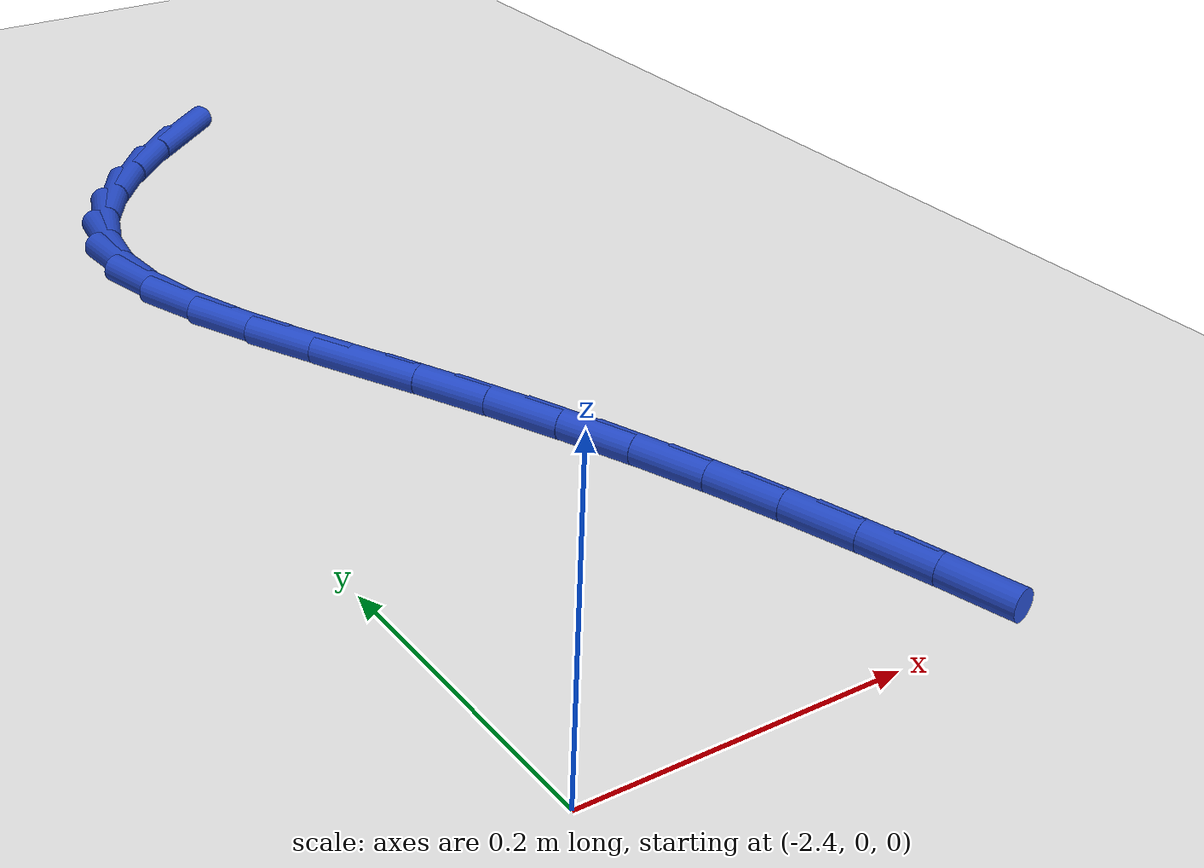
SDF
<sdf version="1.6">
 <world name="default">
  <model name="ground_plane">
   <static>1</static>
   <link name="link">
    <collision name="collision">
     <geometry><plane><normal>0 0 1</normal><size>100 100</size></plane></geometry>
     <surface><friction><ode><mu>100</mu><mu2>50</mu2></ode></friction></surface>
    </collision>
    <visual name="visual">
     <cast_shadows>0</cast_shadows>
     <geometry><plane><normal>0 0 1</normal><size>100 100</size></plane></geometry>
     <material>
      <script><uri>file://media/materials/scripts/gazebo.material</uri><name>Gazebo/WhiteGlow</name></script>
     </material>
    </visual>
   </link>
  </model>
  <model name="line">
   <link name="link_61">
    <pose>-2.2051999308209944 0.8558379560780796 0.01 0 1.57 0.6874436507166901</pose>
    <collision name="collision">
     <geometry><cylinder><radius>0.01</radius><length>0.08</length></cylinder></geometry>
    </collision>
    <visual name="visual">
     <material>
      <script><name>Gazebo/Blue</name><uri>file://media/materials/scripts/gazebo.material</uri></script>
     </material>
     <geometry><cylinder><radius>0.01</radius><length>0.08</length></cylinder></geometry>
    </visual>
   </link>
   <link name="link_62">
    <pose>-2.2441898820816855 0.8238253555588873 0.01 0 1.57 0.776440733396622</pose>
    <collision name="collision">
     <geometry><cylinder><radius>0.01</radius><length>0.08</length></cylinder></geometry>
    </collision>
    <visual name="visual">
     <material>
      <script><name>Gazebo/Blue</name><uri>file://media/materials/scripts/gazebo.material</uri></script>
     </material>
     <geometry><cylinder><radius>0.01</radius><length>0.08</length></cylinder></geometry>
    </visual>
   </link>
   <link name="link_63">
    <pose>-2.278228902363531 0.7903907417959494 0.01 0 1.57 0.8913175580256163</pose>
    <collision name="collision">
     <geometry><cylinder><radius>0.01</radius><length>0.08</length></cylinder></geometry>
    </collision>
    <visual name="visual">
     <material>
      <script><name>Gazebo/Blue</name><uri>file://media/materials/scripts/gazebo.material</uri></script>
     </material>
     <geometry><cylinder><radius>0.01</radius><length>0.08</length></cylinder></geometry>
    </visual>
   </link>
   <link name="link_64">
    <pose>-2.3064871210833005 0.7554090251192842 0.01 0 1.57 1.0373223645908425</pose>
    <collision name="collision">
     <geometry><cylinder><radius>0.01</radius><length>0.08</length></cylinder></geometry>
    </collision>
    <visual name="visual">
     <material>
      <script><name>Gazebo/Blue</name><uri>file://media/materials/scripts/gazebo.material</uri></script>
     </material>
     <geometry><cylinder><radius>0.01</radius><length>0.08</length></cylinder></geometry>
    </visual>
   </link>
   <link name="link_65">
    <pose>-2.32813466765776 0.7187551158589084 0.01 0 1.57 1.2168725509842635</pose>
    <collision name="collision">
     <geometry><cylinder><radius>0.01</radius><length>0.08</length></cylinder></geometry>
    </collision>
    <visual name="visual">
     <material>
      <script><name>Gazebo/Blue</name><uri>file://media/materials/scripts/gazebo.material</uri></script>
     </material>
     <geometry><cylinder><radius>0.01</radius><length>0.08</length></cylinder></geometry>
    </visual>
   </link>
   <link name="link_66">
    <pose>-2.3423416715036787 0.6803039243448393 0.01 0 1.57 1.4248009967054336</pose>
    <collision name="collision">
     <geometry><cylinder><radius>0.01</radius><length>0.08</length></cylinder></geometry>
    </collision>
    <visual name="visual">
     <material>
      <script><name>Gazebo/Blue</name><uri>file://media/materials/scripts/gazebo.material</uri></script>
     </material>
     <geometry><cylinder><radius>0.01</radius><length>0.08</length></cylinder></geometry>
    </visual>
   </link>
   <link name="link_67">
    <pose>-2.348278262037822 0.6399303609070944 0.01 0 1.57 -1.5022703961881914</pose>
    <collision name="collision">
     <geometry><cylinder><radius>0.01</radius><length>0.08</length></cylinder></geometry>
    </collision>
    <visual name="visual">
     <material>
      <script><name>Gazebo/Blue</name><uri>file://media/materials/scripts/gazebo.material</uri></script>
     </material>
     <geometry><cylinder><radius>0.01</radius><length>0.08</length></cylinder></geometry>
    </visual>
   </link>
   <link name="link_68">
    <pose>-2.34537005692187 0.5975573271525267 0.01 0 1.57 -1.3340217669555645</pose>
    <collision name="collision">
     <geometry><cylinder><radius>0.01</radius><length>0.08</length></cylinder></geometry>
    </collision>
    <visual name="visual">
     <material>
      <script><name>Gazebo/Blue</name><uri>file://media/materials/scripts/gazebo.material</uri></script>
     </material>
     <geometry><cylinder><radius>0.01</radius><length>0.08</length></cylinder></geometry>
    </visual>
   </link>
   <link name="link_69">
    <pose>-2.3347203768949876 0.5534228668303172 0.01 0 1.57 -1.2209704856573433</pose>
    <collision name="collision">
     <geometry><cylinder><radius>0.01</radius><length>0.08</length></cylinder></geometry>
    </collision>
    <visual name="visual">
     <material>
      <script><name>Gazebo/Blue</name><uri>file://media/materials/scripts/gazebo.material</uri></script>
     </material>
     <geometry><cylinder><radius>0.01</radius><length>0.08</length></cylinder></geometry>
    </visual>
   </link>
   <link name="link_70">
    <pose>-2.3181093561104293 0.5078921572880356 0.01 0 1.57 -1.1508447634654346</pose>
    <collision name="collision">
     <geometry><cylinder><radius>0.01</radius><length>0.08</length></cylinder></geometry>
    </collision>
    <visual name="visual">
     <material>
      <script><name>Gazebo/Blue</name><uri>file://media/materials/scripts/gazebo.material</uri></script>
     </material>
     <geometry><cylinder><radius>0.01</radius><length>0.08</length></cylinder></geometry>
    </visual>
   </link>
   <link name="link_71">
    <pose>-2.297319005220274 0.4613307283574714 0.01 0 1.57 -1.114384831158453</pose>
    <collision name="collision">
     <geometry><cylinder><radius>0.01</radius><length>0.08</length></cylinder></geometry>
    </collision>
    <visual name="visual">
     <material>
      <script><name>Gazebo/Blue</name><uri>file://media/materials/scripts/gazebo.material</uri></script>
     </material>
     <geometry><cylinder><radius>0.01</radius><length>0.08</length></cylinder></geometry>
    </visual>
   </link>
   <link name="link_72">
    <pose>-2.2741313348765977 0.4141041098704147 0.01 0 1.57 -1.106478323553205</pose>
    <collision name="collision">
     <geometry><cylinder><radius>0.01</radius><length>0.08</length></cylinder></geometry>
    </collision>
    <visual name="visual">
     <material>
      <script><name>Gazebo/Blue</name><uri>file://media/materials/scripts/gazebo.material</uri></script>
     </material>
     <geometry><cylinder><radius>0.01</radius><length>0.08</length></cylinder></geometry>
    </visual>
   </link>
   <link name="link_73">
    <pose>-2.2503283557314777 0.36657783165865415 0.01 0 1.57 -1.1245751413986822</pose>
    <collision name="collision">
     <geometry><cylinder><radius>0.01</radius><length>0.08</length></cylinder></geometry>
    </collision>
    <visual name="visual">
     <material>
      <script><name>Gazebo/Blue</name><uri>file://media/materials/scripts/gazebo.material</uri></script>
     </material>
     <geometry><cylinder><radius>0.01</radius><length>0.08</length></cylinder></geometry>
    </visual>
   </link>
   <link name="link_74">
    <pose>-2.2276154434871844 0.3191013025340409 0.01 0 1.57 -1.1537302645591039</pose>
    <collision name="collision">
     <geometry><cylinder><radius>0.01</radius><length>0.08</length></cylinder></geometry>
    </collision>
    <visual name="visual">
     <material>
      <script><name>Gazebo/Blue</name><uri>file://media/materials/scripts/gazebo.material</uri></script>
     </material>
     <geometry><cylinder><radius>0.01</radius><length>0.08</length></cylinder></geometry>
    </visual>
   </link>
   <link name="link_75">
    <pose>-2.2066607625946713 0.2718057423058133 0.01 0 1.57 -1.1826676853516933</pose>
    <collision name="collision">
     <geometry><cylinder><radius>0.01</radius><length>0.08</length></cylinder></geometry>
    </collision>
    <visual name="visual">
     <material>
      <script><name>Gazebo/Blue</name><uri>file://media/materials/scripts/gazebo.material</uri></script>
     </material>
     <geometry><cylinder><radius>0.01</radius><length>0.08</length></cylinder></geometry>
    </visual>
   </link>
   <link name="link_76">
    <pose>-2.187386560130873 0.22466545870993546 0.01 0 1.57 -1.2109527884124944</pose>
    <collision name="collision">
     <geometry><cylinder><radius>0.01</radius><length>0.08</length></cylinder></geometry>
    </collision>
    <visual name="visual">
     <material>
      <script><name>Gazebo/Blue</name><uri>file://media/materials/scripts/gazebo.material</uri></script>
     </material>
     <geometry><cylinder><radius>0.01</radius><length>0.08</length></cylinder></geometry>
    </visual>
   </link>
   <link name="link_77">
    <pose>-2.169698699184085 0.17765131292687503 0.01 0 1.57 -1.2384067783180133</pose>
    <collision name="collision">
     <geometry><cylinder><radius>0.01</radius><length>0.08</length></cylinder></geometry>
    </collision>
    <visual name="visual">
     <material>
      <script><name>Gazebo/Blue</name><uri>file://media/materials/scripts/gazebo.material</uri></script>
     </material>
     <geometry><cylinder><radius>0.01</radius><length>0.08</length></cylinder></geometry>
    </visual>
   </link>
   <link name="link_78">
    <pose>-2.153503042842599 0.13073416613709743 0.01 0 1.57 -1.2648577319237861</pose>
    <collision name="collision">
     <geometry><cylinder><radius>0.01</radius><length>0.08</length></cylinder></geometry>
    </collision>
    <visual name="visual">
     <material>
      <script><name>Gazebo/Blue</name><uri>file://media/materials/scripts/gazebo.material</uri></script>
     </material>
     <geometry><cylinder><radius>0.01</radius><length>0.08</length></cylinder></geometry>
    </visual>
   </link>
   <link name="link_79">
    <pose>-2.138705454194708 0.08388487952107039 0.01 0 1.57 -1.290143794603306</pose>
    <collision name="collision">
     <geometry><cylinder><radius>0.01</radius><length>0.08</length></cylinder></geometry>
    </collision>
    <visual name="visual">
     <material>
      <script><name>Gazebo/Blue</name><uri>file://media/materials/scripts/gazebo.material</uri></script>
     </material>
     <geometry><cylinder><radius>0.01</radius><length>0.08</length></cylinder></geometry>
    </visual>
   </link>
   <link name="link_80">
    <pose>-2.1252117963287067 0.03707431425925999 0.01 0 1.57 -1.3141158615529263</pose>
    <collision name="collision">
     <geometry><cylinder><radius>0.01</radius><length>0.08</length></cylinder></geometry>
    </collision>
    <visual name="visual">
     <material>
      <script><name>Gazebo/Blue</name><uri>file://media/materials/scripts/gazebo.material</uri></script>
     </material>
     <geometry><cylinder><radius>0.01</radius><length>0.08</length></cylinder></geometry>
    </visual>
   </link>
  </model>
 </world>
</sdf>
